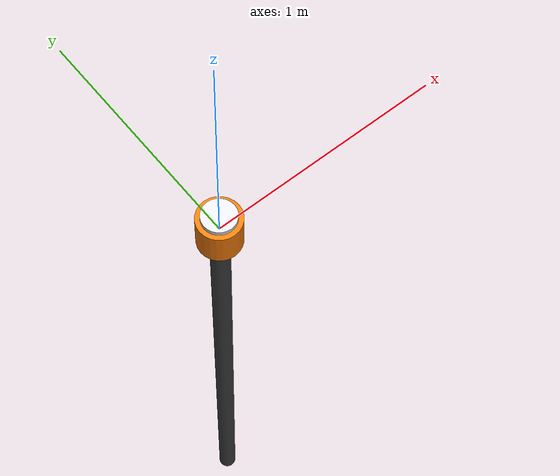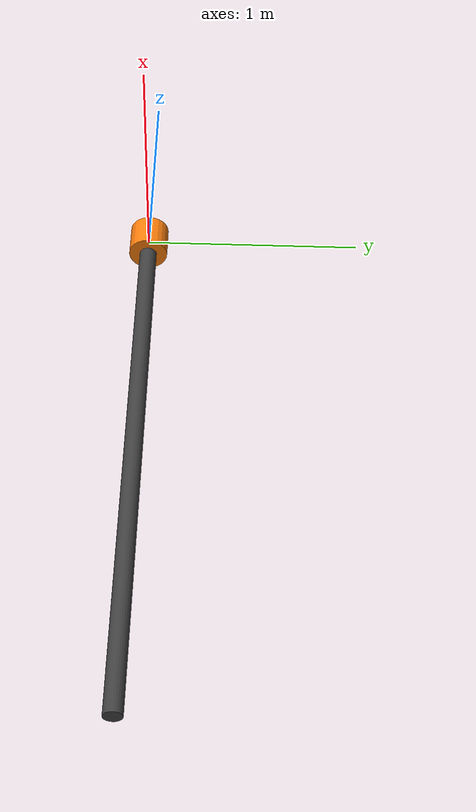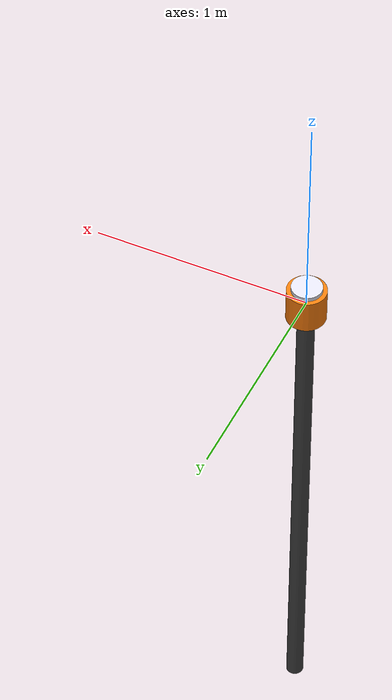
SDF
<?xml version="1.0" encoding="UTF-8"?>
<sdf version="1.9">
  <model name="ground_lidar_sensor">
    <!-- Static stand: position set externally at spawn time -->
    <static>true</static>

    <link name="base">
      <visual name="pole">
        <pose>0 0 -1.25 0 0 0</pose>
        <geometry>
          <cylinder>
            <radius>0.04</radius>
            <length>2.5</length>
          </cylinder>
        </geometry>
        <material>
          <ambient>0.15 0.15 0.15 1</ambient>
          <diffuse>0.25 0.25 0.25 1</diffuse>
        </material>
      </visual>

      <!-- LiDAR housing: bright orange cylinder, clearly visible in the GUI -->
      <visual name="housing">
        <geometry>
          <cylinder>
            <radius>0.09</radius>
            <length>0.16</length>
          </cylinder>
        </geometry>
        <material>
          <ambient>0.9 0.45 0.05 1</ambient>
          <diffuse>1.0 0.5 0.05 1</diffuse>
          <specular>0.3 0.3 0.3 1</specular>
          <emissive>0.3 0.15 0.0 1</emissive>
        </material>
      </visual>

      <!-- Small white cap on top to indicate the scan optics -->
      <visual name="cap">
        <pose>0 0 0.09 0 0 0</pose>
        <geometry>
          <cylinder>
            <radius>0.07</radius>
            <length>0.02</length>
          </cylinder>
        </geometry>
        <material>
          <ambient>0.8 0.8 0.85 1</ambient>
          <diffuse>0.9 0.9 0.95 1</diffuse>
        </material>
      </visual>

      <sensor name="ouster_os0_lidar" type="gpu_lidar">
        <always_on>1</always_on>
        <update_rate>10</update_rate>
        <topic>/ouster</topic>
        <!-- frame_id used in PointCloud2 header after bridging -->
        <gz_frame_id>ouster_frame</gz_frame_id>
        <visualize>true</visualize>

        <lidar>
          <scan>
            <horizontal>
              <samples>1024</samples>
              <resolution>1</resolution>
              <min_angle>-3.14159265358979</min_angle>
              <max_angle>3.14159265358979</max_angle>
            </horizontal>
            <vertical>
              <samples>64</samples>
              <resolution>1</resolution>
              <!-- Ouster OS0 vertical FOV: ±45.4° = ±0.79234 rad -->
              <min_angle>-0.79234</min_angle>
              <max_angle>0.79234</max_angle>
            </vertical>
          </scan>
          <range>
            <min>0.3</min>
            <max>35.0</max>
            <resolution>0.001</resolution>
          </range>
          <noise>
            <type>gaussian</type>
            <mean>0.0</mean>
            <stddev>0.008</stddev>
          </noise>
        </lidar>
      </sensor>
    </link>
  </model>
</sdf>
